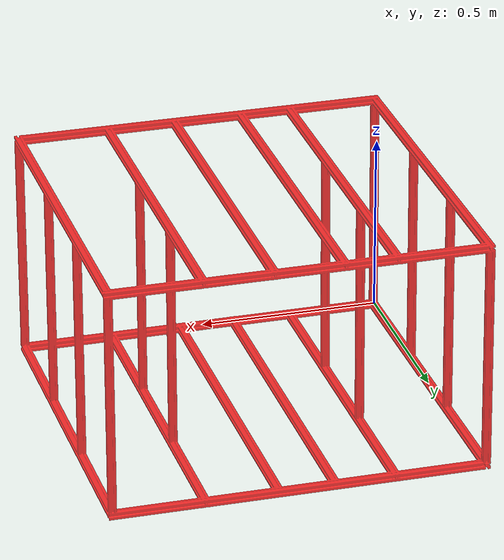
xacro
<?xml version="1.0" ?>

<robot name="paintsystem" xmlns:xacro="http://ros.org/wiki/xacro">

    <material name="red">
        <color rgba="1 0 0 0.8"/>
    </material>

    <link name="base_footprint"/>

    <link name="frame_link">
        <visual>
            <geometry>
                <mesh filename="package://paintsystem_description/meshes/frame_link.STL" scale="1 1 1"/>
            </geometry>
            <origin xyz="0 0 0" rpy="0 0 0"/>
            <material name="red"/>
        </visual>
    </link>

    <joint name="base_joint" type="fixed">
        <parent link="base_footprint"/>
        <child link="frame_link"/>
        <origin xyz="0.0 0.0 0.0" rpy="0 0 0"/>
    </joint>

</robot>
